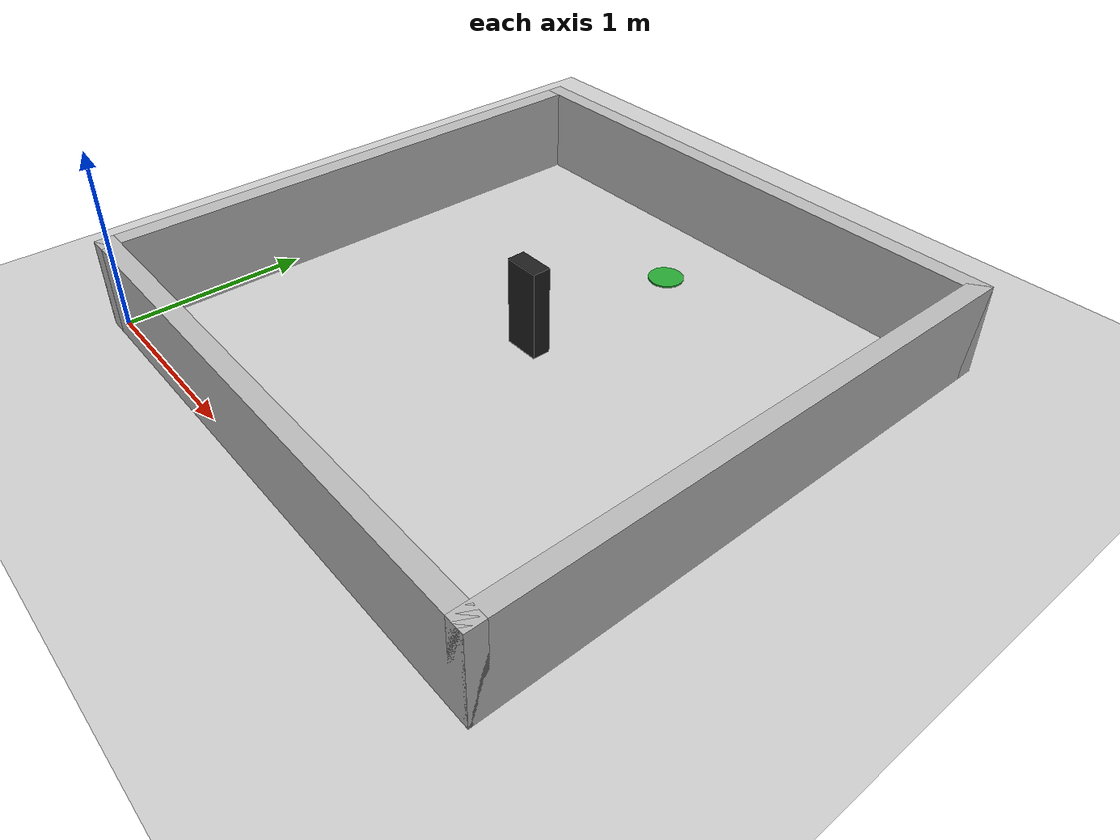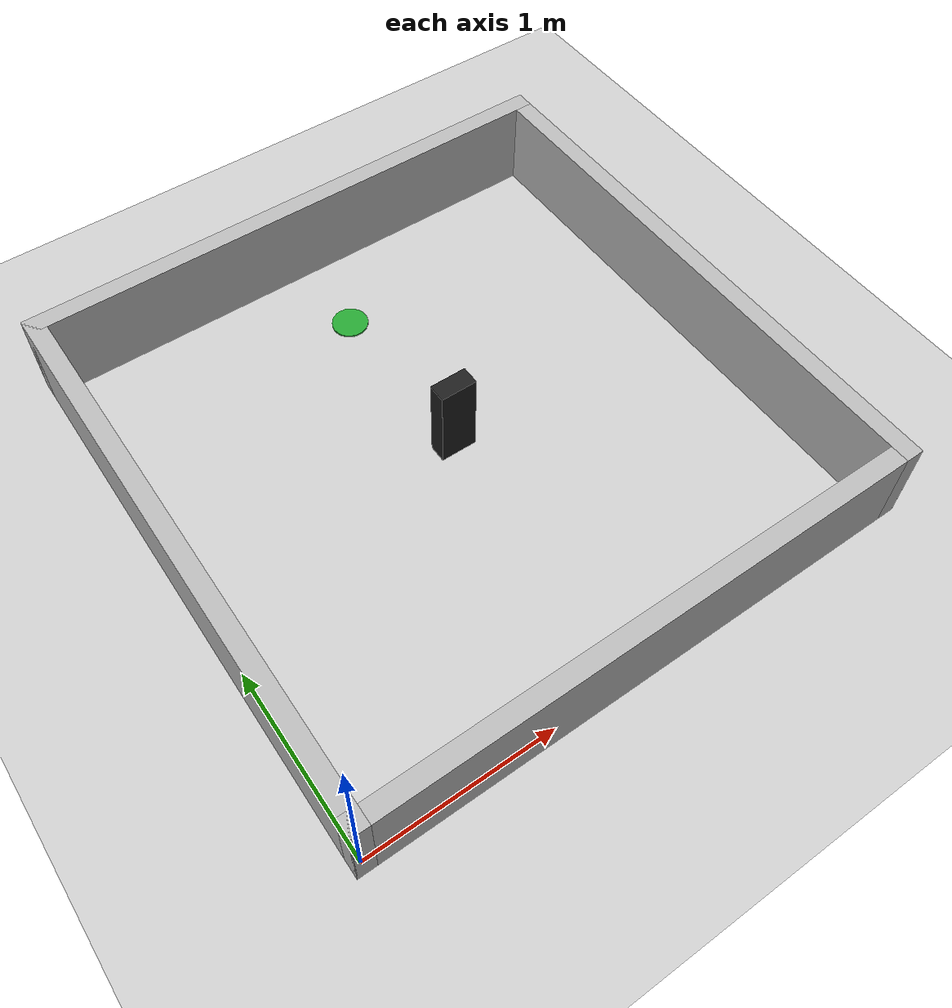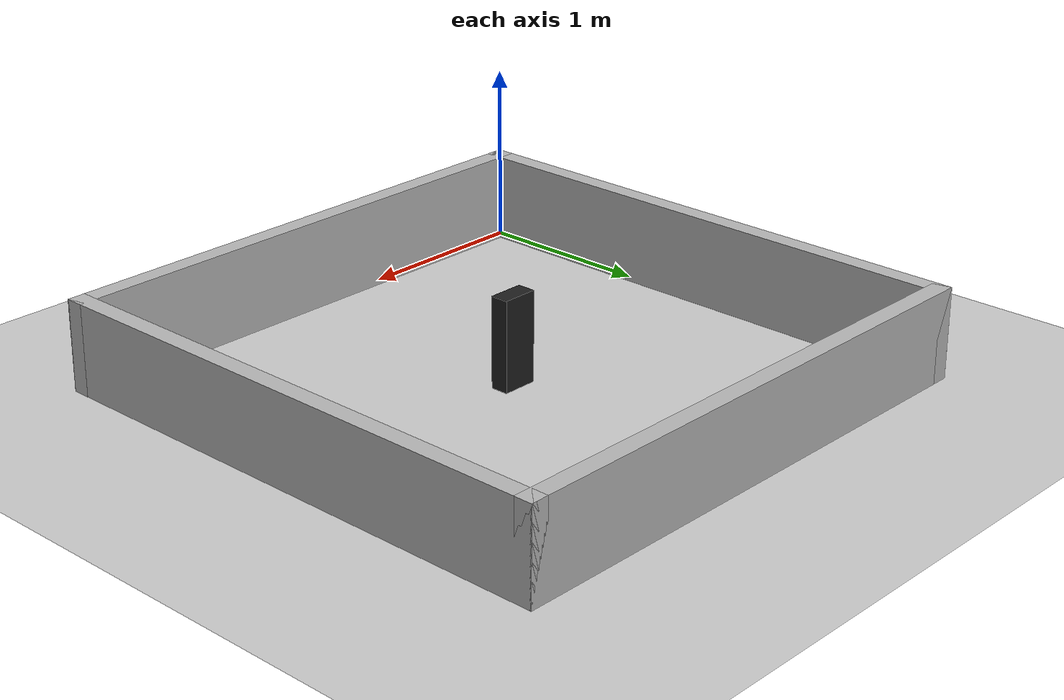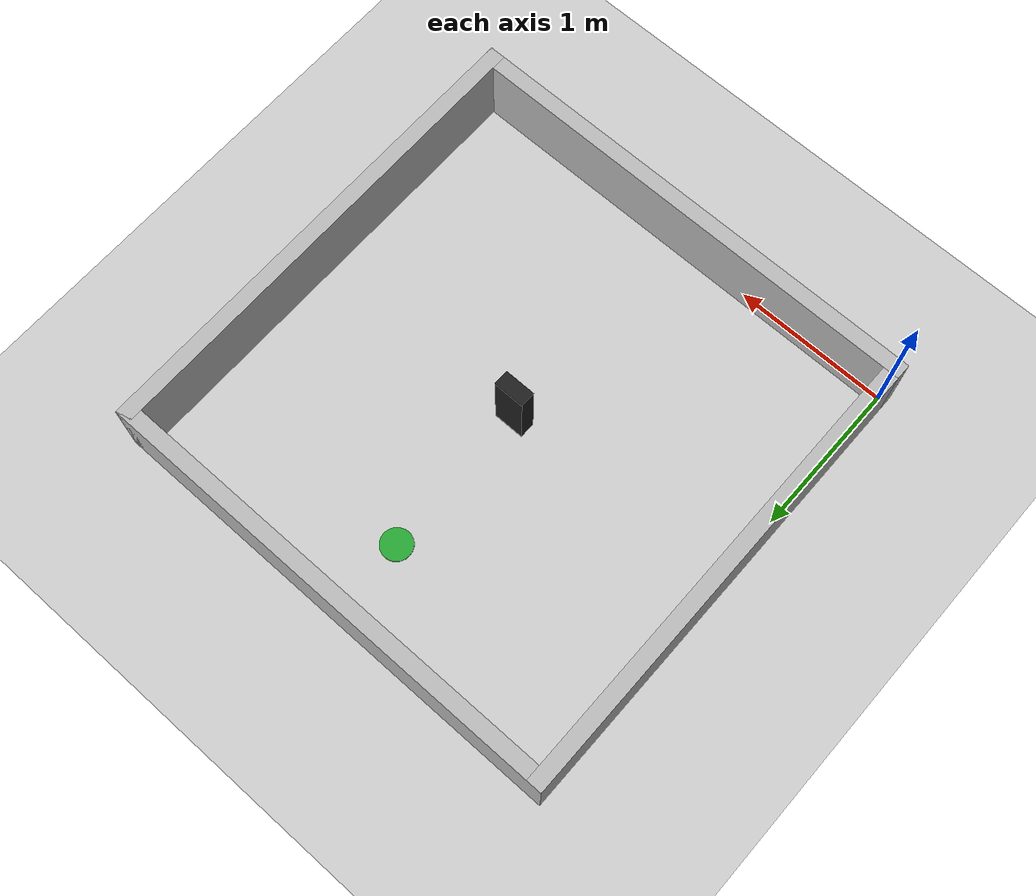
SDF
<?xml version="1.0" ?>
<sdf version="1.5">
  <world name="midterm_world">
    <include>
      <uri>model://sun</uri>
    </include>
    <include>
      <uri>model://ground_plane</uri>
    </include>

    <model name="midterm_obstacle">
      <pose>1.5 1.5 0.25 0 0 0</pose>
      <static>true</static>
      <link name="link">
        <collision name="collision">
          <geometry>
            <box><size>0.2 0.1 0.5</size></box>
          </geometry>
        </collision>
        <visual name="visual">
          <geometry>
            <box><size>0.2 0.1 0.5</size></box>
          </geometry>
          <material>
            <script>
              <uri>file://media/materials/scripts/gazebo.material</uri>
              <name>Gazebo/Black</name>
            </script>
          </material>
        </visual>
      </link>
    </model>

    <model name="wall_bottom">
      <pose>1.5 0 0.25 0 0 0</pose>
      <static>true</static>
      <link name="link">
        <collision name="collision"><geometry><box><size>3.1 0.1 0.5</size></box></geometry></collision>
        <visual name="visual"><geometry><box><size>3.1 0.1 0.5</size></box></geometry></visual>
      </link>
    </model>

    <model name="wall_top">
      <pose>1.5 3.0 0.25 0 0 0</pose>
      <static>true</static>
      <link name="link">
        <collision name="collision"><geometry><box><size>3.1 0.1 0.5</size></box></geometry></collision>
        <visual name="visual"><geometry><box><size>3.1 0.1 0.5</size></box></geometry></visual>
      </link>
    </model>

    <model name="wall_left">
      <pose>0 1.5 0.25 0 0 0</pose>
      <static>true</static>
      <link name="link">
        <collision name="collision"><geometry><box><size>0.1 3.1 0.5</size></box></geometry></collision>
        <visual name="visual"><geometry><box><size>0.1 3.1 0.5</size></box></geometry></visual>
      </link>
    </model>

    <model name="wall_right">
      <pose>3.0 1.5 0.25 0 0 0</pose>
      <static>true</static>
      <link name="link">
        <collision name="collision"><geometry><box><size>0.1 3.1 0.5</size></box></geometry></collision>
        <visual name="visual"><geometry><box><size>0.1 3.1 0.5</size></box></geometry></visual>
      </link>
    </model>

    <model name="goal_marker">
      <pose>1.5 2.5 0.005 0 0 0</pose>
      <static>true</static>
      <link name="link">
        <visual name="visual">
          <geometry>
            <cylinder>
              <radius>0.1</radius>
              <length>0.01</length>
            </cylinder>
          </geometry>
          <material>
            <script>
              <uri>file://media/materials/scripts/gazebo.material</uri>
              <name>Gazebo/Green</name>
            </script>
          </material>
        </visual>
      </link>
    </model>

  </world>
</sdf>
